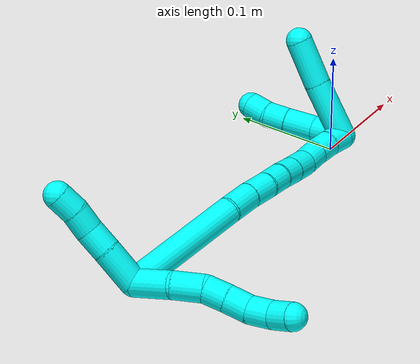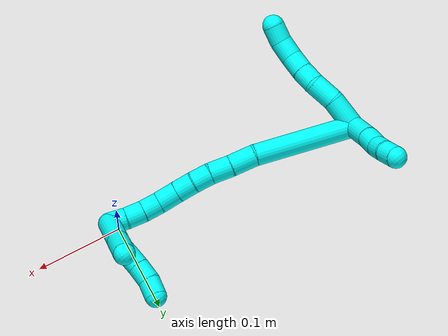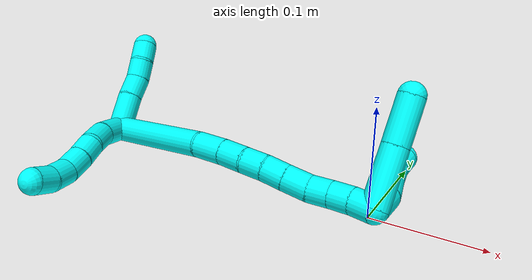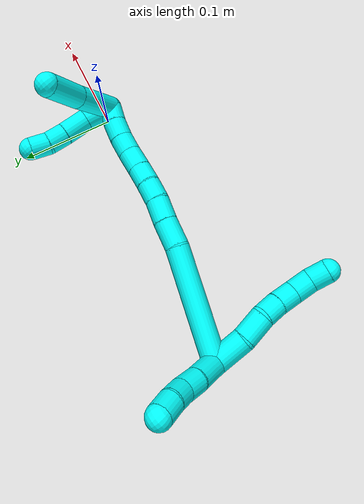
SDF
<sdf version="1.7">
 <world name="default">
  <model name="3">
   <static>0</static>
   <link name="3">
    <collision name="collision-cylinder-e_1_2_8">
     <pose>9.4e-05 -8.4e-05 -0.018459 3.13705 0.005095 1.68596</pose>
     <geometry><cylinder><radius>0.0125</radius><length>0.036918</length></cylinder></geometry>
     <surface>
      <friction><ode><mu>1.16</mu><mu2>1.16</mu2><slip1>0</slip1><slip2>0</slip2></ode></friction>
      <contact><ode><kp>1e+06</kp><kd>1</kd><max_vel>0</max_vel><min_depth>0.001</min_depth></ode></contact>
     </surface>
    </collision>
    <visual name="visual-cylinder-e_1_2_8">
     <pose>9.4e-05 -8.4e-05 -0.018459 3.13705 0.005095 1.68596</pose>
     <geometry><cylinder><radius>0.0125</radius><length>0.036918</length></cylinder></geometry>
     <material><ambient>0.003922 1 0.996078 1</ambient></material>
    </visual>
    <collision name="collision-cylinder-e_2_8_9">
     <pose>0.000966 0.003108 -0.050768 -2.90939 0.054619 -0.460146</pose>
     <geometry><cylinder><radius>0.0125</radius><length>0.028508</length></cylinder></geometry>
     <surface>
      <friction><ode><mu>1.16</mu><mu2>1.16</mu2><slip1>0</slip1><slip2>0</slip2></ode></friction>
      <contact><ode><kp>1e+06</kp><kd>1</kd><max_vel>0</max_vel><min_depth>0.001</min_depth></ode></contact>
     </surface>
    </collision>
    <visual name="visual-cylinder-e_2_8_9">
     <pose>0.000966 0.003108 -0.050768 -2.90939 0.054619 -0.460146</pose>
     <geometry><cylinder><radius>0.0125</radius><length>0.028508</length></cylinder></geometry>
     <material><ambient>0.003922 1 0.996078 1</ambient></material>
    </visual>
    <collision name="collision-cylinder-e_3_9_10">
     <pose>-0.00036 0.010249 -0.073996 -2.75055 -0.20455 0.956217</pose>
     <geometry><cylinder><radius>0.0125</radius><length>0.020717</length></cylinder></geometry>
     <surface>
      <friction><ode><mu>1.16</mu><mu2>1.16</mu2><slip1>0</slip1><slip2>0</slip2></ode></friction>
      <contact><ode><kp>1e+06</kp><kd>1</kd><max_vel>0</max_vel><min_depth>0.001</min_depth></ode></contact>
     </surface>
    </collision>
    <visual name="visual-cylinder-e_3_9_10">
     <pose>-0.00036 0.010249 -0.073996 -2.75055 -0.20455 0.956217</pose>
     <geometry><cylinder><radius>0.0125</radius><length>0.020717</length></cylinder></geometry>
     <material><ambient>0.003922 1 0.996078 1</ambient></material>
    </visual>
    <collision name="collision-cylinder-e_4_10_11">
     <pose>-0.005373 0.017357 -0.093267 -2.82492 -0.272429 1.41871</pose>
     <geometry><cylinder><radius>0.0125</radius><length>0.021623</length></cylinder></geometry>
     <surface>
      <friction><ode><mu>1.16</mu><mu2>1.16</mu2><slip1>0</slip1><slip2>0</slip2></ode></friction>
      <contact><ode><kp>1e+06</kp><kd>1</kd><max_vel>0</max_vel><min_depth>0.001</min_depth></ode></contact>
     </surface>
    </collision>
    <visual name="visual-cylinder-e_4_10_11">
     <pose>-0.005373 0.017357 -0.093267 -2.82492 -0.272429 1.41871</pose>
     <geometry><cylinder><radius>0.0125</radius><length>0.021623</length></cylinder></geometry>
     <material><ambient>0.003922 1 0.996078 1</ambient></material>
    </visual>
    <collision name="collision-cylinder-e_5_11_12">
     <pose>-0.009616 0.021238 -0.114086 -3.08327 -0.121323 2.24614</pose>
     <geometry><cylinder><radius>0.0125</radius><length>0.022047</length></cylinder></geometry>
     <surface>
      <friction><ode><mu>1.16</mu><mu2>1.16</mu2><slip1>0</slip1><slip2>0</slip2></ode></friction>
      <contact><ode><kp>1e+06</kp><kd>1</kd><max_vel>0</max_vel><min_depth>0.001</min_depth></ode></contact>
     </surface>
    </collision>
    <visual name="visual-cylinder-e_5_11_12">
     <pose>-0.009616 0.021238 -0.114086 -3.08327 -0.121323 2.24614</pose>
     <geometry><cylinder><radius>0.0125</radius><length>0.022047</length></cylinder></geometry>
     <material><ambient>0.003922 1 0.996078 1</ambient></material>
    </visual>
    <collision name="collision-cylinder-e_6_12_6">
     <pose>-0.011959 0.019757 -0.134827 2.92903 -0.100152 -0.878354</pose>
     <geometry><cylinder><radius>0.0125</radius><length>0.020187</length></cylinder></geometry>
     <surface>
      <friction><ode><mu>1.16</mu><mu2>1.16</mu2><slip1>0</slip1><slip2>0</slip2></ode></friction>
      <contact><ode><kp>1e+06</kp><kd>1</kd><max_vel>0</max_vel><min_depth>0.001</min_depth></ode></contact>
     </surface>
    </collision>
    <visual name="visual-cylinder-e_6_12_6">
     <pose>-0.011959 0.019757 -0.134827 2.92903 -0.100152 -0.878354</pose>
     <geometry><cylinder><radius>0.0125</radius><length>0.020187</length></cylinder></geometry>
     <material><ambient>0.003922 1 0.996078 1</ambient></material>
    </visual>
    <collision name="collision-cylinder-e_1_2_13">
     <pose>0.008378 -0.013463 0.009455 0.958543 0.471015 0.248127</pose>
     <geometry><cylinder><radius>0.0125</radius><length>0.036924</length></cylinder></geometry>
     <surface>
      <friction><ode><mu>1.16</mu><mu2>1.16</mu2><slip1>0</slip1><slip2>0</slip2></ode></friction>
      <contact><ode><kp>1e+06</kp><kd>1</kd><max_vel>0</max_vel><min_depth>0.001</min_depth></ode></contact>
     </surface>
    </collision>
    <visual name="visual-cylinder-e_1_2_13">
     <pose>0.008378 -0.013463 0.009455 0.958543 0.471015 0.248127</pose>
     <geometry><cylinder><radius>0.0125</radius><length>0.036924</length></cylinder></geometry>
     <material><ambient>0.003922 1 0.996078 1</ambient></material>
    </visual>
    <collision name="collision-cylinder-e_2_13_14">
     <pose>0.022161 -0.034291 0.025445 0.844988 0.502038 0.22955</pose>
     <geometry><cylinder><radius>0.0125</radius><length>0.022464</length></cylinder></geometry>
     <surface>
      <friction><ode><mu>1.16</mu><mu2>1.16</mu2><slip1>0</slip1><slip2>0</slip2></ode></friction>
      <contact><ode><kp>1e+06</kp><kd>1</kd><max_vel>0</max_vel><min_depth>0.001</min_depth></ode></contact>
     </surface>
    </collision>
    <visual name="visual-cylinder-e_2_13_14">
     <pose>0.022161 -0.034291 0.025445 0.844988 0.502038 0.22955</pose>
     <geometry><cylinder><radius>0.0125</radius><length>0.022464</length></cylinder></geometry>
     <material><ambient>0.003922 1 0.996078 1</ambient></material>
    </visual>
    <collision name="collision-cylinder-e_3_14_15">
     <pose>0.032251 -0.049614 0.036225 1.0808 0.479112 0.291011</pose>
     <geometry><cylinder><radius>0.0125</radius><length>0.020328</length></cylinder></geometry>
     <surface>
      <friction><ode><mu>1.16</mu><mu2>1.16</mu2><slip1>0</slip1><slip2>0</slip2></ode></friction>
      <contact><ode><kp>1e+06</kp><kd>1</kd><max_vel>0</max_vel><min_depth>0.001</min_depth></ode></contact>
     </surface>
    </collision>
    <visual name="visual-cylinder-e_3_14_15">
     <pose>0.032251 -0.049614 0.036225 1.0808 0.479112 0.291011</pose>
     <geometry><cylinder><radius>0.0125</radius><length>0.020328</length></cylinder></geometry>
     <material><ambient>0.003922 1 0.996078 1</ambient></material>
    </visual>
    <collision name="collision-cylinder-e_4_15_5">
     <pose>0.04031 -0.065324 0.046073 0.944904 0.339027 0.174496</pose>
     <geometry><cylinder><radius>0.0125</radius><length>0.020284</length></cylinder></geometry>
     <surface>
      <friction><ode><mu>1.16</mu><mu2>1.16</mu2><slip1>0</slip1><slip2>0</slip2></ode></friction>
      <contact><ode><kp>1e+06</kp><kd>1</kd><max_vel>0</max_vel><min_depth>0.001</min_depth></ode></contact>
     </surface>
    </collision>
    <visual name="visual-cylinder-e_4_15_5">
     <pose>0.04031 -0.065324 0.046073 0.944904 0.339027 0.174496</pose>
     <geometry><cylinder><radius>0.0125</radius><length>0.020284</length></cylinder></geometry>
     <material><ambient>0.003922 1 0.996078 1</ambient></material>
    </visual>
    <collision name="collision-cylinder-e_1_2_16">
     <pose>0.048874 0.026136 -0.021576 -2.26091 0.964485 -1.67579</pose>
     <geometry><cylinder><radius>0.0125</radius><length>0.118949</length></cylinder></geometry>
     <surface>
      <friction><ode><mu>1.16</mu><mu2>1.16</mu2><slip1>0</slip1><slip2>0</slip2></ode></friction>
      <contact><ode><kp>1e+06</kp><kd>1</kd><max_vel>0</max_vel><min_depth>0.001</min_depth></ode></contact>
     </surface>
    </collision>
    <visual name="visual-cylinder-e_1_2_16">
     <pose>0.048874 0.026136 -0.021576 -2.26091 0.964485 -1.67579</pose>
     <geometry><cylinder><radius>0.0125</radius><length>0.118949</length></cylinder></geometry>
     <material><ambient>0.003922 1 0.996078 1</ambient></material>
    </visual>
    <collision name="collision-cylinder-e_2_16_17">
     <pose>0.109262 0.060464 -0.046608 -1.97001 0.913259 -1.27469</pose>
     <geometry><cylinder><radius>0.0125</radius><length>0.029097</length></cylinder></geometry>
     <surface>
      <friction><ode><mu>1.16</mu><mu2>1.16</mu2><slip1>0</slip1><slip2>0</slip2></ode></friction>
      <contact><ode><kp>1e+06</kp><kd>1</kd><max_vel>0</max_vel><min_depth>0.001</min_depth></ode></contact>
     </surface>
    </collision>
    <visual name="visual-cylinder-e_2_16_17">
     <pose>0.109262 0.060464 -0.046608 -1.97001 0.913259 -1.27469</pose>
     <geometry><cylinder><radius>0.0125</radius><length>0.029097</length></cylinder></geometry>
     <material><ambient>0.003922 1 0.996078 1</ambient></material>
    </visual>
    <collision name="collision-cylinder-e_3_17_18">
     <pose>0.13005 0.075879 -0.053684 -2.03539 0.854116 -1.27038</pose>
     <geometry><cylinder><radius>0.0125</radius><length>0.024598</length></cylinder></geometry>
     <surface>
      <friction><ode><mu>1.16</mu><mu2>1.16</mu2><slip1>0</slip1><slip2>0</slip2></ode></friction>
      <contact><ode><kp>1e+06</kp><kd>1</kd><max_vel>0</max_vel><min_depth>0.001</min_depth></ode></contact>
     </surface>
    </collision>
    <visual name="visual-cylinder-e_3_17_18">
     <pose>0.13005 0.075879 -0.053684 -2.03539 0.854116 -1.27038</pose>
     <geometry><cylinder><radius>0.0125</radius><length>0.024598</length></cylinder></geometry>
     <material><ambient>0.003922 1 0.996078 1</ambient></material>
    </visual>
    <collision name="collision-cylinder-e_4_18_19">
     <pose>0.147379 0.089936 -0.059186 -1.8396 0.849141 -1.07116</pose>
     <geometry><cylinder><radius>0.0125</radius><length>0.02146</length></cylinder></geometry>
     <surface>
      <friction><ode><mu>1.16</mu><mu2>1.16</mu2><slip1>0</slip1><slip2>0</slip2></ode></friction>
      <contact><ode><kp>1e+06</kp><kd>1</kd><max_vel>0</max_vel><min_depth>0.001</min_depth></ode></contact>
     </surface>
    </collision>
    <visual name="visual-cylinder-e_4_18_19">
     <pose>0.147379 0.089936 -0.059186 -1.8396 0.849141 -1.07116</pose>
     <geometry><cylinder><radius>0.0125</radius><length>0.02146</length></cylinder></geometry>
     <material><ambient>0.003922 1 0.996078 1</ambient></material>
    </visual>
    <collision name="collision-cylinder-e_5_19_20">
     <pose>0.162708 0.104232 -0.062417 -1.74961 0.764598 -0.897102</pose>
     <geometry><cylinder><radius>0.0125</radius><length>0.021016</length></cylinder></geometry>
     <surface>
      <friction><ode><mu>1.16</mu><mu2>1.16</mu2><slip1>0</slip1><slip2>0</slip2></ode></friction>
      <contact><ode><kp>1e+06</kp><kd>1</kd><max_vel>0</max_vel><min_depth>0.001</min_depth></ode></contact>
     </surface>
    </collision>
    <visual name="visual-cylinder-e_5_19_20">
     <pose>0.162708 0.104232 -0.062417 -1.74961 0.764598 -0.897102</pose>
     <geometry><cylinder><radius>0.0125</radius><length>0.021016</length></cylinder></geometry>
     <material><ambient>0.003922 1 0.996078 1</ambient></material>
    </visual>
    <collision name="collision-cylinder-e_6_20_21">
     <pose>0.178366 0.120037 -0.065062 -1.72486 0.781936 -0.896888</pose>
     <geometry><cylinder><radius>0.0125</radius><length>0.023797</length></cylinder></geometry>
     <surface>
      <friction><ode><mu>1.16</mu><mu2>1.16</mu2><slip1>0</slip1><slip2>0</slip2></ode></friction>
      <contact><ode><kp>1e+06</kp><kd>1</kd><max_vel>0</max_vel><min_depth>0.001</min_depth></ode></contact>
     </surface>
    </collision>
    <visual name="visual-cylinder-e_6_20_21">
     <pose>0.178366 0.120037 -0.065062 -1.72486 0.781936 -0.896888</pose>
     <geometry><cylinder><radius>0.0125</radius><length>0.023797</length></cylinder></geometry>
     <material><ambient>0.003922 1 0.996078 1</ambient></material>
    </visual>
    <collision name="collision-cylinder-e_7_21_22">
     <pose>0.195102 0.134029 -0.068084 -1.86737 0.955119 -1.22049</pose>
     <geometry><cylinder><radius>0.0125</radius><length>0.020459</length></cylinder></geometry>
     <surface>
      <friction><ode><mu>1.16</mu><mu2>1.16</mu2><slip1>0</slip1><slip2>0</slip2></ode></friction>
      <contact><ode><kp>1e+06</kp><kd>1</kd><max_vel>0</max_vel><min_depth>0.001</min_depth></ode></contact>
     </surface>
    </collision>
    <visual name="visual-cylinder-e_7_21_22">
     <pose>0.195102 0.134029 -0.068084 -1.86737 0.955119 -1.22049</pose>
     <geometry><cylinder><radius>0.0125</radius><length>0.020459</length></cylinder></geometry>
     <material><ambient>0.003922 1 0.996078 1</ambient></material>
    </visual>
    <collision name="collision-cylinder-e_8_22_23">
     <pose>0.211606 0.145228 -0.072501 -2.02237 0.923189 -1.34228</pose>
     <geometry><cylinder><radius>0.0125</radius><length>0.020446</length></cylinder></geometry>
     <surface>
      <friction><ode><mu>1.16</mu><mu2>1.16</mu2><slip1>0</slip1><slip2>0</slip2></ode></friction>
      <contact><ode><kp>1e+06</kp><kd>1</kd><max_vel>0</max_vel><min_depth>0.001</min_depth></ode></contact>
     </surface>
    </collision>
    <visual name="visual-cylinder-e_8_22_23">
     <pose>0.211606 0.145228 -0.072501 -2.02237 0.923189 -1.34228</pose>
     <geometry><cylinder><radius>0.0125</radius><length>0.020446</length></cylinder></geometry>
     <material><ambient>0.003922 1 0.996078 1</ambient></material>
    </visual>
    <collision name="collision-cylinder-e_9_23_1">
     <pose>0.227202 0.156561 -0.078792 -2.12743 0.8296 -1.3405</pose>
     <geometry><cylinder><radius>0.0125</radius><length>0.020179</length></cylinder></geometry>
     <surface>
      <friction><ode><mu>1.16</mu><mu2>1.16</mu2><slip1>0</slip1><slip2>0</slip2></ode></friction>
      <contact><ode><kp>1e+06</kp><kd>1</kd><max_vel>0</max_vel><min_depth>0.001</min_depth></ode></contact>
     </surface>
    </collision>
    <visual name="visual-cylinder-e_9_23_1">
     <pose>0.227202 0.156561 -0.078792 -2.12743 0.8296 -1.3405</pose>
     <geometry><cylinder><radius>0.0125</radius><length>0.020179</length></cylinder></geometry>
     <material><ambient>0.003922 1 0.996078 1</ambient></material>
    </visual>
    <collision name="collision-cylinder-e_1_1_24">
     <pose>0.251907 0.143016 -0.072477 1.09687 0.67149 0.420103</pose>
     <geometry><cylinder><radius>0.0125</radius><length>0.055493</length></cylinder></geometry>
     <surface>
      <friction><ode><mu>1.16</mu><mu2>1.16</mu2><slip1>0</slip1><slip2>0</slip2></ode></friction>
      <contact><ode><kp>1e+06</kp><kd>1</kd><max_vel>0</max_vel><min_depth>0.001</min_depth></ode></contact>
     </surface>
    </collision>
    <visual name="visual-cylinder-e_1_1_24">
     <pose>0.251907 0.143016 -0.072477 1.09687 0.67149 0.420103</pose>
     <geometry><cylinder><radius>0.0125</radius><length>0.055493</length></cylinder></geometry>
     <material><ambient>0.003922 1 0.996078 1</ambient></material>
    </visual>
    <collision name="collision-cylinder-e_2_24_4">
     <pose>0.283224 0.107833 -0.055756 1.16525 0.68355 0.460494</pose>
     <geometry><cylinder><radius>0.0125</radius><length>0.044507</length></cylinder></geometry>
     <surface>
      <friction><ode><mu>1.16</mu><mu2>1.16</mu2><slip1>0</slip1><slip2>0</slip2></ode></friction>
      <contact><ode><kp>1e+06</kp><kd>1</kd><max_vel>0</max_vel><min_depth>0.001</min_depth></ode></contact>
     </surface>
    </collision>
    <visual name="visual-cylinder-e_2_24_4">
     <pose>0.283224 0.107833 -0.055756 1.16525 0.68355 0.460494</pose>
     <geometry><cylinder><radius>0.0125</radius><length>0.044507</length></cylinder></geometry>
     <material><ambient>0.003922 1 0.996078 1</ambient></material>
    </visual>
    <collision name="collision-cylinder-e_1_1_25">
     <pose>0.237982 0.162217 -0.067542 0.008604 0.221106 0.000955</pose>
     <geometry><cylinder><radius>0.0125</radius><length>0.030441</length></cylinder></geometry>
     <surface>
      <friction><ode><mu>1.16</mu><mu2>1.16</mu2><slip1>0</slip1><slip2>0</slip2></ode></friction>
      <contact><ode><kp>1e+06</kp><kd>1</kd><max_vel>0</max_vel><min_depth>0.001</min_depth></ode></contact>
     </surface>
    </collision>
    <visual name="visual-cylinder-e_1_1_25">
     <pose>0.237982 0.162217 -0.067542 0.008604 0.221106 0.000955</pose>
     <geometry><cylinder><radius>0.0125</radius><length>0.030441</length></cylinder></geometry>
     <material><ambient>0.003922 1 0.996078 1</ambient></material>
    </visual>
    <collision name="collision-cylinder-e_2_25_26">
     <pose>0.243263 0.158386 -0.038924 0.262687 0.135425 0.017917</pose>
     <geometry><cylinder><radius>0.0125</radius><length>0.028779</length></cylinder></geometry>
     <surface>
      <friction><ode><mu>1.16</mu><mu2>1.16</mu2><slip1>0</slip1><slip2>0</slip2></ode></friction>
      <contact><ode><kp>1e+06</kp><kd>1</kd><max_vel>0</max_vel><min_depth>0.001</min_depth></ode></contact>
     </surface>
    </collision>
    <visual name="visual-cylinder-e_2_25_26">
     <pose>0.243263 0.158386 -0.038924 0.262687 0.135425 0.017917</pose>
     <geometry><cylinder><radius>0.0125</radius><length>0.028779</length></cylinder></geometry>
     <material><ambient>0.003922 1 0.996078 1</ambient></material>
    </visual>
    <collision name="collision-cylinder-e_3_26_27">
     <pose>0.247124 0.152401 -0.015301 0.22763 0.187379 0.021481</pose>
     <geometry><cylinder><radius>0.0125</radius><length>0.020591</length></cylinder></geometry>
     <surface>
      <friction><ode><mu>1.16</mu><mu2>1.16</mu2><slip1>0</slip1><slip2>0</slip2></ode></friction>
      <contact><ode><kp>1e+06</kp><kd>1</kd><max_vel>0</max_vel><min_depth>0.001</min_depth></ode></contact>
     </surface>
    </collision>
    <visual name="visual-cylinder-e_3_26_27">
     <pose>0.247124 0.152401 -0.015301 0.22763 0.187379 0.021481</pose>
     <geometry><cylinder><radius>0.0125</radius><length>0.020591</length></cylinder></geometry>
     <material><ambient>0.003922 1 0.996078 1</ambient></material>
    </visual>
    <collision name="collision-cylinder-e_4_27_3">
     <pose>0.253124 0.148686 0.003674 0.155798 0.416379 0.032976</pose>
     <geometry><cylinder><radius>0.0125</radius><length>0.020189</length></cylinder></geometry>
     <surface>
      <friction><ode><mu>1.16</mu><mu2>1.16</mu2><slip1>0</slip1><slip2>0</slip2></ode></friction>
      <contact><ode><kp>1e+06</kp><kd>1</kd><max_vel>0</max_vel><min_depth>0.001</min_depth></ode></contact>
     </surface>
    </collision>
    <visual name="visual-cylinder-e_4_27_3">
     <pose>0.253124 0.148686 0.003674 0.155798 0.416379 0.032976</pose>
     <geometry><cylinder><radius>0.0125</radius><length>0.020189</length></cylinder></geometry>
     <material><ambient>0.003922 1 0.996078 1</ambient></material>
    </visual>
    <collision name="collision-sphere-3">
     <pose>0.257207 0.147253 0.012794 0 -0 0</pose>
     <geometry><sphere><radius>0.0125</radius></sphere></geometry>
     <surface>
      <friction><ode><mu>1.16</mu><mu2>1.16</mu2><slip1>0</slip1><slip2>0</slip2></ode></friction>
      <contact><ode><kp>1e+06</kp><kd>1</kd><max_vel>0</max_vel><min_depth>0.001</min_depth></ode></contact>
     </surface>
    </collision>
    <visual name="visual-sphere-3">
     <pose>0.257207 0.147253 0.012794 0 -0 0</pose>
     <geometry><sphere><radius>0.0125</radius></sphere></geometry>
     <material><ambient>0.003922 1 0.996078 1</ambient></material>
    </visual>
    <collision name="collision-sphere-27">
     <pose>0.249041 0.150119 -0.005446 0 -0 0</pose>
     <geometry><sphere><radius>0.0125</radius></sphere></geometry>
     <surface>
      <friction><ode><mu>1.16</mu><mu2>1.16</mu2><slip1>0</slip1><slip2>0</slip2></ode></friction>
      <contact><ode><kp>1e+06</kp><kd>1</kd><max_vel>0</max_vel><min_depth>0.001</min_depth></ode></contact>
     </surface>
    </collision>
    <visual name="visual-sphere-27">
     <pose>0.249041 0.150119 -0.005446 0 -0 0</pose>
     <geometry><sphere><radius>0.0125</radius></sphere></geometry>
     <material><ambient>0.003922 1 0.996078 1</ambient></material>
    </visual>
    <collision name="collision-sphere-26">
     <pose>0.245206 0.154684 -0.025155 0 -0 0</pose>
     <geometry><sphere><radius>0.0125</radius></sphere></geometry>
     <surface>
      <friction><ode><mu>1.16</mu><mu2>1.16</mu2><slip1>0</slip1><slip2>0</slip2></ode></friction>
      <contact><ode><kp>1e+06</kp><kd>1</kd><max_vel>0</max_vel><min_depth>0.001</min_depth></ode></contact>
     </surface>
    </collision>
    <visual name="visual-sphere-26">
     <pose>0.245206 0.154684 -0.025155 0 -0 0</pose>
     <geometry><sphere><radius>0.0125</radius></sphere></geometry>
     <material><ambient>0.003922 1 0.996078 1</ambient></material>
    </visual>
    <collision name="collision-sphere-25">
     <pose>0.24132 0.162089 -0.052692 0 -0 0</pose>
     <geometry><sphere><radius>0.0125</radius></sphere></geometry>
     <surface>
      <friction><ode><mu>1.16</mu><mu2>1.16</mu2><slip1>0</slip1><slip2>0</slip2></ode></friction>
      <contact><ode><kp>1e+06</kp><kd>1</kd><max_vel>0</max_vel><min_depth>0.001</min_depth></ode></contact>
     </surface>
    </collision>
    <visual name="visual-sphere-25">
     <pose>0.24132 0.162089 -0.052692 0 -0 0</pose>
     <geometry><sphere><radius>0.0125</radius></sphere></geometry>
     <material><ambient>0.003922 1 0.996078 1</ambient></material>
    </visual>
    <collision name="collision-sphere-4">
     <pose>0.297278 0.091979 -0.048949 0 -0 0</pose>
     <geometry><sphere><radius>0.0125</radius></sphere></geometry>
     <surface>
      <friction><ode><mu>1.16</mu><mu2>1.16</mu2><slip1>0</slip1><slip2>0</slip2></ode></friction>
      <contact><ode><kp>1e+06</kp><kd>1</kd><max_vel>0</max_vel><min_depth>0.001</min_depth></ode></contact>
     </surface>
    </collision>
    <visual name="visual-sphere-4">
     <pose>0.297278 0.091979 -0.048949 0 -0 0</pose>
     <geometry><sphere><radius>0.0125</radius></sphere></geometry>
     <material><ambient>0.003922 1 0.996078 1</ambient></material>
    </visual>
    <collision name="collision-sphere-24">
     <pose>0.269169 0.123688 -0.062563 0 -0 0</pose>
     <geometry><sphere><radius>0.0125</radius></sphere></geometry>
     <surface>
      <friction><ode><mu>1.16</mu><mu2>1.16</mu2><slip1>0</slip1><slip2>0</slip2></ode></friction>
      <contact><ode><kp>1e+06</kp><kd>1</kd><max_vel>0</max_vel><min_depth>0.001</min_depth></ode></contact>
     </surface>
    </collision>
    <visual name="visual-sphere-24">
     <pose>0.269169 0.123688 -0.062563 0 -0 0</pose>
     <geometry><sphere><radius>0.0125</radius></sphere></geometry>
     <material><ambient>0.003922 1 0.996078 1</ambient></material>
    </visual>
    <collision name="collision-sphere-1">
     <pose>0.234644 0.162344 -0.082391 0 -0 0</pose>
     <geometry><sphere><radius>0.0125</radius></sphere></geometry>
     <surface>
      <friction><ode><mu>1.16</mu><mu2>1.16</mu2><slip1>0</slip1><slip2>0</slip2></ode></friction>
      <contact><ode><kp>1e+06</kp><kd>1</kd><max_vel>0</max_vel><min_depth>0.001</min_depth></ode></contact>
     </surface>
    </collision>
    <visual name="visual-sphere-1">
     <pose>0.234644 0.162344 -0.082391 0 -0 0</pose>
     <geometry><sphere><radius>0.0125</radius></sphere></geometry>
     <material><ambient>0.003922 1 0.996078 1</ambient></material>
    </visual>
    <collision name="collision-sphere-23">
     <pose>0.219759 0.150777 -0.075193 0 -0 0</pose>
     <geometry><sphere><radius>0.0125</radius></sphere></geometry>
     <surface>
      <friction><ode><mu>1.16</mu><mu2>1.16</mu2><slip1>0</slip1><slip2>0</slip2></ode></friction>
      <contact><ode><kp>1e+06</kp><kd>1</kd><max_vel>0</max_vel><min_depth>0.001</min_depth></ode></contact>
     </surface>
    </collision>
    <visual name="visual-sphere-23">
     <pose>0.219759 0.150777 -0.075193 0 -0 0</pose>
     <geometry><sphere><radius>0.0125</radius></sphere></geometry>
     <material><ambient>0.003922 1 0.996078 1</ambient></material>
    </visual>
    <collision name="collision-sphere-22">
     <pose>0.203453 0.139679 -0.06981 0 -0 0</pose>
     <geometry><sphere><radius>0.0125</radius></sphere></geometry>
     <surface>
      <friction><ode><mu>1.16</mu><mu2>1.16</mu2><slip1>0</slip1><slip2>0</slip2></ode></friction>
      <contact><ode><kp>1e+06</kp><kd>1</kd><max_vel>0</max_vel><min_depth>0.001</min_depth></ode></contact>
     </surface>
    </collision>
    <visual name="visual-sphere-22">
     <pose>0.203453 0.139679 -0.06981 0 -0 0</pose>
     <geometry><sphere><radius>0.0125</radius></sphere></geometry>
     <material><ambient>0.003922 1 0.996078 1</ambient></material>
    </visual>
    <collision name="collision-sphere-21">
     <pose>0.18675 0.128379 -0.066357 0 -0 0</pose>
     <geometry><sphere><radius>0.0125</radius></sphere></geometry>
     <surface>
      <friction><ode><mu>1.16</mu><mu2>1.16</mu2><slip1>0</slip1><slip2>0</slip2></ode></friction>
      <contact><ode><kp>1e+06</kp><kd>1</kd><max_vel>0</max_vel><min_depth>0.001</min_depth></ode></contact>
     </surface>
    </collision>
    <visual name="visual-sphere-21">
     <pose>0.18675 0.128379 -0.066357 0 -0 0</pose>
     <geometry><sphere><radius>0.0125</radius></sphere></geometry>
     <material><ambient>0.003922 1 0.996078 1</ambient></material>
    </visual>
    <collision name="collision-sphere-12">
     <pose>-0.01095 0.021876 -0.12501 0 -0 0</pose>
     <geometry><sphere><radius>0.0125</radius></sphere></geometry>
     <surface>
      <friction><ode><mu>1.16</mu><mu2>1.16</mu2><slip1>0</slip1><slip2>0</slip2></ode></friction>
      <contact><ode><kp>1e+06</kp><kd>1</kd><max_vel>0</max_vel><min_depth>0.001</min_depth></ode></contact>
     </surface>
    </collision>
    <visual name="visual-sphere-12">
     <pose>-0.01095 0.021876 -0.12501 0 -0 0</pose>
     <geometry><sphere><radius>0.0125</radius></sphere></geometry>
     <material><ambient>0.003922 1 0.996078 1</ambient></material>
    </visual>
    <collision name="collision-sphere-11">
     <pose>-0.008282 0.0206 -0.103163 0 -0 0</pose>
     <geometry><sphere><radius>0.0125</radius></sphere></geometry>
     <surface>
      <friction><ode><mu>1.16</mu><mu2>1.16</mu2><slip1>0</slip1><slip2>0</slip2></ode></friction>
      <contact><ode><kp>1e+06</kp><kd>1</kd><max_vel>0</max_vel><min_depth>0.001</min_depth></ode></contact>
     </surface>
    </collision>
    <visual name="visual-sphere-11">
     <pose>-0.008282 0.0206 -0.103163 0 -0 0</pose>
     <geometry><sphere><radius>0.0125</radius></sphere></geometry>
     <material><ambient>0.003922 1 0.996078 1</ambient></material>
    </visual>
    <collision name="collision-sphere-10">
     <pose>-0.002464 0.014115 -0.083372 0 -0 0</pose>
     <geometry><sphere><radius>0.0125</radius></sphere></geometry>
     <surface>
      <friction><ode><mu>1.16</mu><mu2>1.16</mu2><slip1>0</slip1><slip2>0</slip2></ode></friction>
      <contact><ode><kp>1e+06</kp><kd>1</kd><max_vel>0</max_vel><min_depth>0.001</min_depth></ode></contact>
     </surface>
    </collision>
    <visual name="visual-sphere-10">
     <pose>-0.002464 0.014115 -0.083372 0 -0 0</pose>
     <geometry><sphere><radius>0.0125</radius></sphere></geometry>
     <material><ambient>0.003922 1 0.996078 1</ambient></material>
    </visual>
    <collision name="collision-sphere-9">
     <pose>0.001744 0.006383 -0.064619 0 -0 0</pose>
     <geometry><sphere><radius>0.0125</radius></sphere></geometry>
     <surface>
      <friction><ode><mu>1.16</mu><mu2>1.16</mu2><slip1>0</slip1><slip2>0</slip2></ode></friction>
      <contact><ode><kp>1e+06</kp><kd>1</kd><max_vel>0</max_vel><min_depth>0.001</min_depth></ode></contact>
     </surface>
    </collision>
    <visual name="visual-sphere-9">
     <pose>0.001744 0.006383 -0.064619 0 -0 0</pose>
     <geometry><sphere><radius>0.0125</radius></sphere></geometry>
     <material><ambient>0.003922 1 0.996078 1</ambient></material>
    </visual>
    <collision name="collision-sphere-2">
     <geometry><sphere><radius>0.0125</radius></sphere></geometry>
     <surface>
      <friction><ode><mu>1.16</mu><mu2>1.16</mu2><slip1>0</slip1><slip2>0</slip2></ode></friction>
      <contact><ode><kp>1e+06</kp><kd>1</kd><max_vel>0</max_vel><min_depth>0.001</min_depth></ode></contact>
     </surface>
    </collision>
    <visual name="visual-sphere-2">
     <geometry><sphere><radius>0.0125</radius></sphere></geometry>
     <material><ambient>0.003922 1 0.996078 1</ambient></material>
    </visual>
    <collision name="collision-sphere-19">
     <pose>0.155434 0.096769 -0.061069 0 -0 0</pose>
     <geometry><sphere><radius>0.0125</radius></sphere></geometry>
     <surface>
      <friction><ode><mu>1.16</mu><mu2>1.16</mu2><slip1>0</slip1><slip2>0</slip2></ode></friction>
      <contact><ode><kp>1e+06</kp><kd>1</kd><max_vel>0</max_vel><min_depth>0.001</min_depth></ode></contact>
     </surface>
    </collision>
    <visual name="visual-sphere-19">
     <pose>0.155434 0.096769 -0.061069 0 -0 0</pose>
     <geometry><sphere><radius>0.0125</radius></sphere></geometry>
     <material><ambient>0.003922 1 0.996078 1</ambient></material>
    </visual>
    <collision name="collision-sphere-8">
     <pose>0.000188 -0.000168 -0.036917 0 -0 0</pose>
     <geometry><sphere><radius>0.0125</radius></sphere></geometry>
     <surface>
      <friction><ode><mu>1.16</mu><mu2>1.16</mu2><slip1>0</slip1><slip2>0</slip2></ode></friction>
      <contact><ode><kp>1e+06</kp><kd>1</kd><max_vel>0</max_vel><min_depth>0.001</min_depth></ode></contact>
     </surface>
    </collision>
    <visual name="visual-sphere-8">
     <pose>0.000188 -0.000168 -0.036917 0 -0 0</pose>
     <geometry><sphere><radius>0.0125</radius></sphere></geometry>
     <material><ambient>0.003922 1 0.996078 1</ambient></material>
    </visual>
    <collision name="collision-sphere-6">
     <pose>-0.012968 0.017638 -0.144644 0 -0 0</pose>
     <geometry><sphere><radius>0.0125</radius></sphere></geometry>
     <surface>
      <friction><ode><mu>1.16</mu><mu2>1.16</mu2><slip1>0</slip1><slip2>0</slip2></ode></friction>
      <contact><ode><kp>1e+06</kp><kd>1</kd><max_vel>0</max_vel><min_depth>0.001</min_depth></ode></contact>
     </surface>
    </collision>
    <visual name="visual-sphere-6">
     <pose>-0.012968 0.017638 -0.144644 0 -0 0</pose>
     <geometry><sphere><radius>0.0125</radius></sphere></geometry>
     <material><ambient>0.003922 1 0.996078 1</ambient></material>
    </visual>
    <collision name="collision-sphere-13">
     <pose>0.016756 -0.026927 0.01891 0 -0 0</pose>
     <geometry><sphere><radius>0.0125</radius></sphere></geometry>
     <surface>
      <friction><ode><mu>1.16</mu><mu2>1.16</mu2><slip1>0</slip1><slip2>0</slip2></ode></friction>
      <contact><ode><kp>1e+06</kp><kd>1</kd><max_vel>0</max_vel><min_depth>0.001</min_depth></ode></contact>
     </surface>
    </collision>
    <visual name="visual-sphere-13">
     <pose>0.016756 -0.026927 0.01891 0 -0 0</pose>
     <geometry><sphere><radius>0.0125</radius></sphere></geometry>
     <material><ambient>0.003922 1 0.996078 1</ambient></material>
    </visual>
    <collision name="collision-sphere-14">
     <pose>0.027566 -0.041655 0.03198 0 -0 0</pose>
     <geometry><sphere><radius>0.0125</radius></sphere></geometry>
     <surface>
      <friction><ode><mu>1.16</mu><mu2>1.16</mu2><slip1>0</slip1><slip2>0</slip2></ode></friction>
      <contact><ode><kp>1e+06</kp><kd>1</kd><max_vel>0</max_vel><min_depth>0.001</min_depth></ode></contact>
     </surface>
    </collision>
    <visual name="visual-sphere-14">
     <pose>0.027566 -0.041655 0.03198 0 -0 0</pose>
     <geometry><sphere><radius>0.0125</radius></sphere></geometry>
     <material><ambient>0.003922 1 0.996078 1</ambient></material>
    </visual>
    <collision name="collision-sphere-15">
     <pose>0.036937 -0.057572 0.04047 0 -0 0</pose>
     <geometry><sphere><radius>0.0125</radius></sphere></geometry>
     <surface>
      <friction><ode><mu>1.16</mu><mu2>1.16</mu2><slip1>0</slip1><slip2>0</slip2></ode></friction>
      <contact><ode><kp>1e+06</kp><kd>1</kd><max_vel>0</max_vel><min_depth>0.001</min_depth></ode></contact>
     </surface>
    </collision>
    <visual name="visual-sphere-15">
     <pose>0.036937 -0.057572 0.04047 0 -0 0</pose>
     <geometry><sphere><radius>0.0125</radius></sphere></geometry>
     <material><ambient>0.003922 1 0.996078 1</ambient></material>
    </visual>
    <collision name="collision-sphere-5">
     <pose>0.043683 -0.073075 0.051676 0 -0 0</pose>
     <geometry><sphere><radius>0.0125</radius></sphere></geometry>
     <surface>
      <friction><ode><mu>1.16</mu><mu2>1.16</mu2><slip1>0</slip1><slip2>0</slip2></ode></friction>
      <contact><ode><kp>1e+06</kp><kd>1</kd><max_vel>0</max_vel><min_depth>0.001</min_depth></ode></contact>
     </surface>
    </collision>
    <visual name="visual-sphere-5">
     <pose>0.043683 -0.073075 0.051676 0 -0 0</pose>
     <geometry><sphere><radius>0.0125</radius></sphere></geometry>
     <material><ambient>0.003922 1 0.996078 1</ambient></material>
    </visual>
    <collision name="collision-sphere-16">
     <pose>0.097747 0.052272 -0.043152 0 -0 0</pose>
     <geometry><sphere><radius>0.0125</radius></sphere></geometry>
     <surface>
      <friction><ode><mu>1.16</mu><mu2>1.16</mu2><slip1>0</slip1><slip2>0</slip2></ode></friction>
      <contact><ode><kp>1e+06</kp><kd>1</kd><max_vel>0</max_vel><min_depth>0.001</min_depth></ode></contact>
     </surface>
    </collision>
    <visual name="visual-sphere-16">
     <pose>0.097747 0.052272 -0.043152 0 -0 0</pose>
     <geometry><sphere><radius>0.0125</radius></sphere></geometry>
     <material><ambient>0.003922 1 0.996078 1</ambient></material>
    </visual>
    <collision name="collision-sphere-17">
     <pose>0.120777 0.068656 -0.050064 0 -0 0</pose>
     <geometry><sphere><radius>0.0125</radius></sphere></geometry>
     <surface>
      <friction><ode><mu>1.16</mu><mu2>1.16</mu2><slip1>0</slip1><slip2>0</slip2></ode></friction>
      <contact><ode><kp>1e+06</kp><kd>1</kd><max_vel>0</max_vel><min_depth>0.001</min_depth></ode></contact>
     </surface>
    </collision>
    <visual name="visual-sphere-17">
     <pose>0.120777 0.068656 -0.050064 0 -0 0</pose>
     <geometry><sphere><radius>0.0125</radius></sphere></geometry>
     <material><ambient>0.003922 1 0.996078 1</ambient></material>
    </visual>
    <collision name="collision-sphere-18">
     <pose>0.139324 0.083102 -0.057304 0 -0 0</pose>
     <geometry><sphere><radius>0.0125</radius></sphere></geometry>
     <surface>
      <friction><ode><mu>1.16</mu><mu2>1.16</mu2><slip1>0</slip1><slip2>0</slip2></ode></friction>
      <contact><ode><kp>1e+06</kp><kd>1</kd><max_vel>0</max_vel><min_depth>0.001</min_depth></ode></contact>
     </surface>
    </collision>
    <visual name="visual-sphere-18">
     <pose>0.139324 0.083102 -0.057304 0 -0 0</pose>
     <geometry><sphere><radius>0.0125</radius></sphere></geometry>
     <material><ambient>0.003922 1 0.996078 1</ambient></material>
    </visual>
    <collision name="collision-sphere-20">
     <pose>0.169982 0.111694 -0.063766 0 -0 0</pose>
     <geometry><sphere><radius>0.0125</radius></sphere></geometry>
     <surface>
      <friction><ode><mu>1.16</mu><mu2>1.16</mu2><slip1>0</slip1><slip2>0</slip2></ode></friction>
      <contact><ode><kp>1e+06</kp><kd>1</kd><max_vel>0</max_vel><min_depth>0.001</min_depth></ode></contact>
     </surface>
    </collision>
    <visual name="visual-sphere-20">
     <pose>0.169982 0.111694 -0.063766 0 -0 0</pose>
     <geometry><sphere><radius>0.0125</radius></sphere></geometry>
     <material><ambient>0.003922 1 0.996078 1</ambient></material>
    </visual>
    <inertial>
     <pose>0.118245 0.065191 -0.042777 0 -0 0</pose>
     <mass>0.75</mass>
     <inertia>
      <ixx>-1.1e-05</ixx>
      <ixy>0</ixy>
      <ixz>0</ixz>
      <iyy>6.7e-05</iyy>
      <iyz>0</iyz>
      <izz>-0.000203</izz>
     </inertia>
    </inertial>
   </link>
   <pose>-0.287978 0.018029 0.011972 -1.8163 -0.538083 0.326345</pose>
  </model>
 </world>
</sdf>
